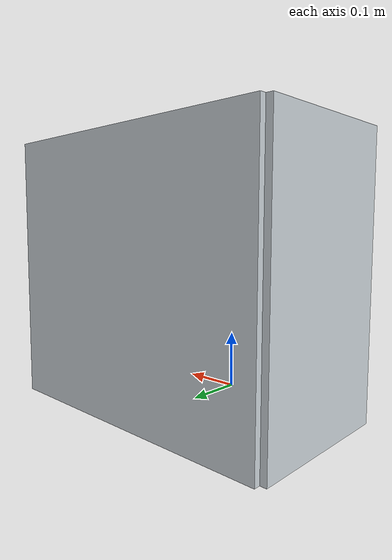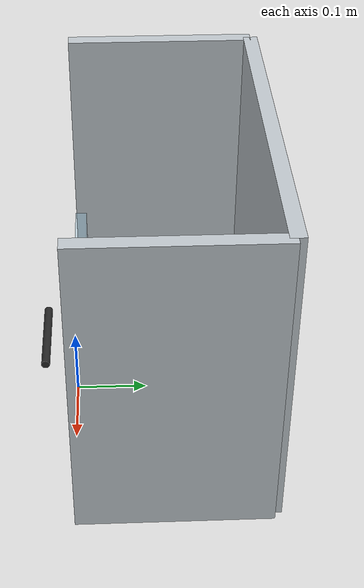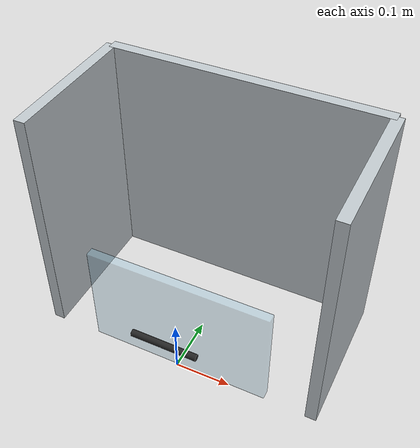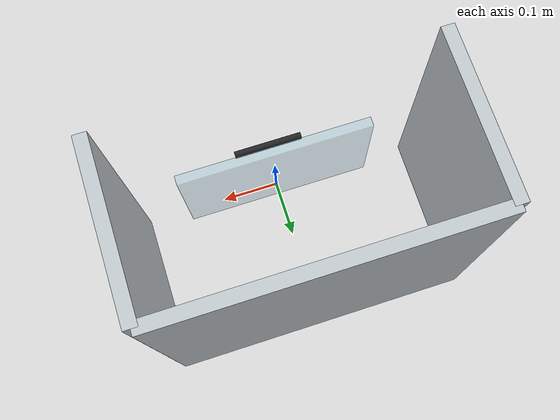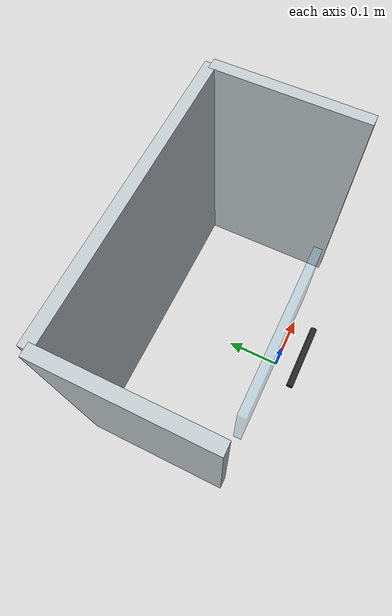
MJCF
<?xml version="1.0" encoding="utf-8"?>
<mujoco model="fume_hood">
  <compiler angle="radian" autolimits="true"/>

  <default>
    <default class="housing">
      <geom type="box" rgba="0.75 0.78 0.8 1" contype="1" conaffinity="1"/>
    </default>
    <default class="sash">
      <geom type="box" rgba="0.55 0.75 0.85 0.35" contype="1" conaffinity="1"/>
    </default>
    <default class="handle">
      <geom type="cylinder" rgba="0.15 0.15 0.15 1" contype="1" conaffinity="1"/>
    </default>
  </default>

  <worldbody>
    <body name="housing">
      <geom name="back_wall" class="housing" size="0.25 0.01 0.22" pos="0 0.26 0.22"/>
      <geom name="left_wall" class="housing" size="0.01 0.13 0.22" pos="-0.25 0.13 0.22"/>
      <geom name="right_wall" class="housing" size="0.01 0.13 0.22" pos="0.25 0.13 0.22"/>

      <body name="sash" pos="0 0.01 0.10" gravcomp="1">
        <joint name="sash_slide" type="slide" axis="0 0 1" range="0 0.18" damping="8" frictionloss="2"/>
        <geom name="sash_pane" class="sash" size="0.165 0.008 0.10"/>
        <body name="handle" pos="0 -0.05 0" gravcomp="1">
          <geom name="handle_bar" class="handle" size="0.006 0.06" quat="0.7071068 0 0.7071068 0"/>
          <site name="grasp_site" pos="0 0 0" size="0.005" rgba="1 0 0 1" group="4"/>
        </body>
      </body>
    </body>
  </worldbody>
</mujoco>
